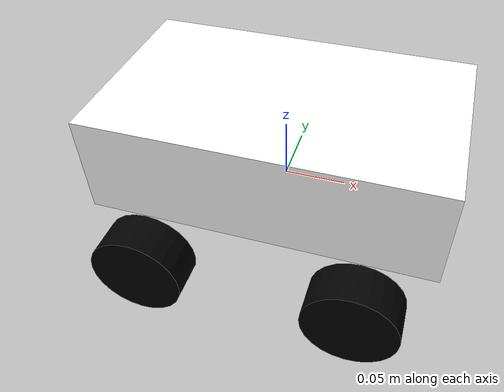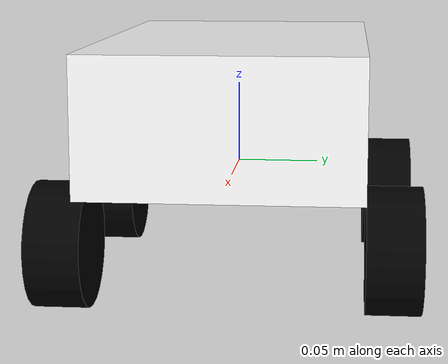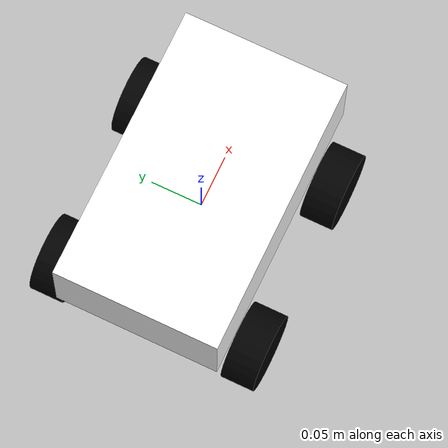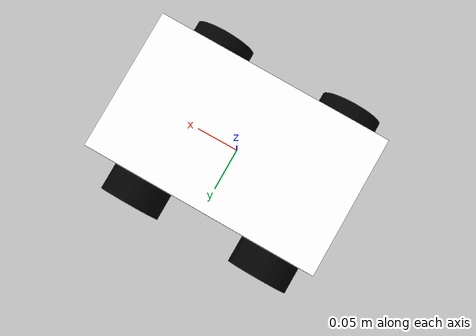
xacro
<?xml version="1.0"?>
<robot xmlns:xacro="http://www.ros.org/wiki/xacro" >

    <xacro:include filename="inertial_macros.xacro"/>
    <xacro:include filename="materials.xacro"/>

    <!-- BASE LINK -->

    <link name="base_link">

    </link>

    <!-- CHASSIS LINK -->

    <joint name="chassis_joint" type="fixed">
        <parent link="base_link"/>
        <child link="chassis"/>
        <origin xyz="-0.135 0 0"/>
    </joint>

    <link name="chassis">
        <visual>
            <origin xyz="0.135 0 0.04"/>
            <geometry>
                <box size="0.27 0.16 0.08"/>
            </geometry>
            <material name="white"/>
        </visual>
        <collision>
            <origin xyz="0.135 0 0.04"/>
            <geometry>
                <box size="0.27 0.16 0.08"/>
            </geometry>
        </collision>
        <xacro:inertial_box mass="0.5" x="0.27" y="0.16" z="0.08">
            <origin xyz="0.135 0 0.04" rpy="0 0 0" />
        </xacro:inertial_box>
    </link>

    <gazebo reference="chassis">
        <material>Gazebo/White</material>
    </gazebo>

    <!-- REAR LEFT WHEEL LINK -->

    <joint name="rear_left_wheel_joint" type="continuous">
        <parent link="base_link"/>
        <child link="rear_left_wheel"/>
        <origin xyz="-0.090 0.09675 -0.0375" rpy="-${pi/2} 0 0" />
        <axis xyz="0 0 1"/>
    </joint>

    <link name="rear_left_wheel">
        <visual>
            <geometry>
                <cylinder radius="0.0375" length="0.0325"/>
            </geometry>
            <material name="black"/>
        </visual>
        <collision>
            <geometry>
                <cylinder radius="0.0375" length="0.0325"/>
            </geometry>
        </collision>
        <xacro:inertial_cylinder mass="0.1" length="0.0325" radius="0.0375">
            <origin xyz="0 0 0" rpy="0 0 0"/>
        </xacro:inertial_cylinder>
    </link>

    <gazebo reference="rear_left_wheel">
        <material>Gazebo/Black</material>
    </gazebo>

    <!-- REAR RIGHT WHEEL LINK -->

    <joint name="rear_right_wheel_joint" type="continuous">
        <parent link="base_link"/>
        <child link="rear_right_wheel"/>
        <origin xyz="-0.090 -0.09675 -0.0375" rpy="${pi/2} 0 0" />
        <axis xyz="0 0 -1"/>
    </joint>

    <link name="rear_right_wheel">
        <visual>
            <geometry>
                <cylinder radius="0.0375" length="0.0325"/>
            </geometry>
            <material name="black"/>
        </visual>
        <collision>
            <geometry>
                <cylinder radius="0.0375" length="0.0325"/>
            </geometry>
        </collision>
        <xacro:inertial_cylinder mass="0.1" length="0.0325" radius="0.0375">
            <origin xyz="0 0 0" rpy="0 0 0"/>
        </xacro:inertial_cylinder>
    </link>

    <gazebo reference="rear_right_wheel">
        <material>Gazebo/Black</material>
    </gazebo>

       <!-- FRONT LEFT WHEEL LINK -->

    <joint name="front_left_wheel_joint" type="continuous">
        <parent link="base_link"/>
        <child link="front_left_wheel"/>
        <origin xyz="0.080 0.09675 -0.0375" rpy="-${pi/2} 0 0" />
        <axis xyz="0 0 1"/>
    </joint>

    <link name="front_left_wheel">
        <visual>
            <geometry>
                <cylinder radius="0.0375" length="0.0325"/>
            </geometry>
            <material name="black"/>
        </visual>
        <collision>
            <geometry>
                <cylinder radius="0.0375" length="0.0325"/>
            </geometry>
        </collision>
        <xacro:inertial_cylinder mass="0.1" length="0.0325" radius="0.0375">
            <origin xyz="0 0 0" rpy="0 0 0"/>
        </xacro:inertial_cylinder>
    </link>

    <gazebo reference="front_left_wheel">
        <material>Gazebo/Black</material>
    </gazebo>

    <!-- FRONT RIGHT WHEEL LINK -->

    <joint name="front_right_wheel_joint" type="continuous">
        <parent link="base_link"/>
        <child link="front_right_wheel"/>
        <origin xyz="0.080 -0.09675 -0.0375" rpy="${pi/2} 0 0" />
        <axis xyz="0 0 -1"/>
    </joint>

    <link name="front_right_wheel">
        <visual>
            <geometry>
                <cylinder radius="0.0375" length="0.0325"/>
            </geometry>
            <material name="black"/>
        </visual>
        <collision>
            <geometry>
                <cylinder radius="0.0375" length="0.0325"/>
            </geometry>
        </collision>
        <xacro:inertial_cylinder mass="0.1" length="0.0325" radius="0.0375">
            <origin xyz="0 0 0" rpy="0 0 0"/>
        </xacro:inertial_cylinder>
    </link>

    <gazebo reference="front_right_wheel">
        <material>Gazebo/Black</material>
    </gazebo>

</robot>

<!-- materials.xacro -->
<robot xmlns:xacro="http://www.ros.org/wiki/xacro"  name="robot">

    <material name="white">
        <color rgba="1 1 1 1" />
    </material>

    <material name="orange">
        <color rgba="1 0.3 0.1 1"/>
    </material>

    <material name="blue">
        <color rgba="0.2 0.2 1 1"/>
    </material>

    <material name="black">
        <color rgba="0 0 0 1"/>
    </material>

</robot>
